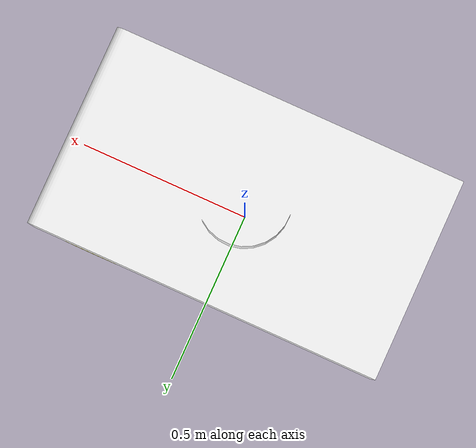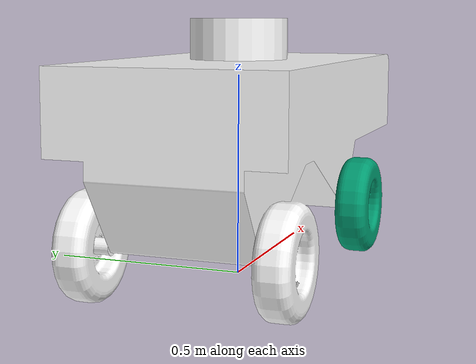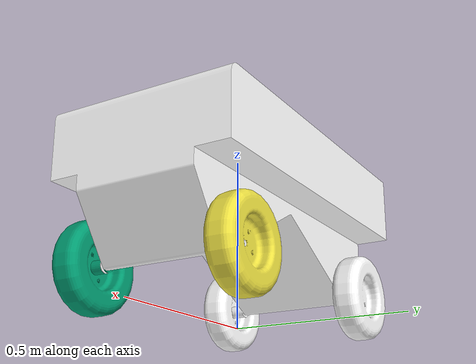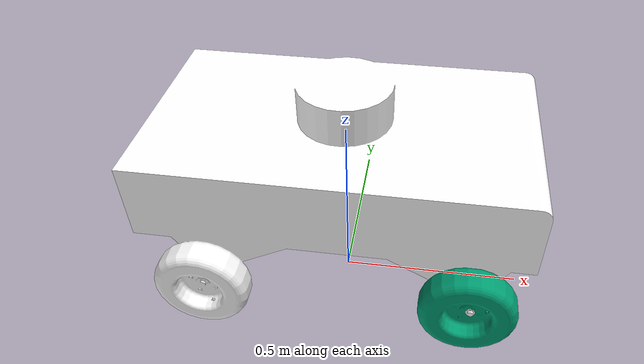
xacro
<?xmal version="1.0"?>
<robot xmlns:xacro='https://ros.org/wiki/xacro' name='urdf_test'>
    <xacro:property name="wheel_diameter" value="0.068"/>
    <xacro:property name="wheel_speration" value="0.180"/>
    <material name="white">
        <color rgba="1 1 1 1" />
    </material>

    <link name = 'base_link'/>

    <joint name = 'body_joint' type='fixed'>
        <parent link='base_link'/>
        <child link = 'robot_body'/>
        <origin xyz="0.0 0.0 0.36" rpy="0.0 0.0 0.0"/>
    </joint>

    <link name="robot_body">
        <visual>
            <origin xyz="0.0 0.0 0.0" rpy="0 0 0.0"/>
            <geometry>
                <mesh filename="package://description/meshes/robot_a/robot_a_body.stl" scale="0.001 0.001 0.001"/>
            </geometry>
            <material name="white"/>
        </visual>
    </link>

    <joint name="r_wheel_joint" type="continuous">
        <parent link='robot_body'/>
        <child link='r_wheel'/>
        <origin xyz="0.35 -0.23 -0.23" rpy="1.57 0 0"/>
        <axis xyz='0 0 1'/>
    </joint>

    <link name="r_wheel">
        <visual>
            <origin xyz="0 0 0" rpy="0 0 0"/>
            <geometry>
                <mesh filename="package://description/meshes/robot_a/robot_a_r_wheel.stl" scale="0.001 0.001 0.001"/>
            </geometry>
        </visual>
    </link>

    <joint name="l_wheel_joint" type="continuous">
        <origin xyz="0.35 0.23 -0.23" rpy="-1.57 0 0"/>
        <parent link="robot_body"/>
        <child link="l_wheel"/>
        <axis xyz='0 0 1'/>
    </joint>

    <link name="l_wheel">
        <visual>
            <origin xyz="0 0 0" rpy="0 0 0"/>
                <geometry>
                    <mesh filename="package://description/meshes/robot_a/robot_a_l_wheel.stl" scale="0.001 0.001 0.001"/>
                </geometry>
        </visual>
    </link>

</robot>
